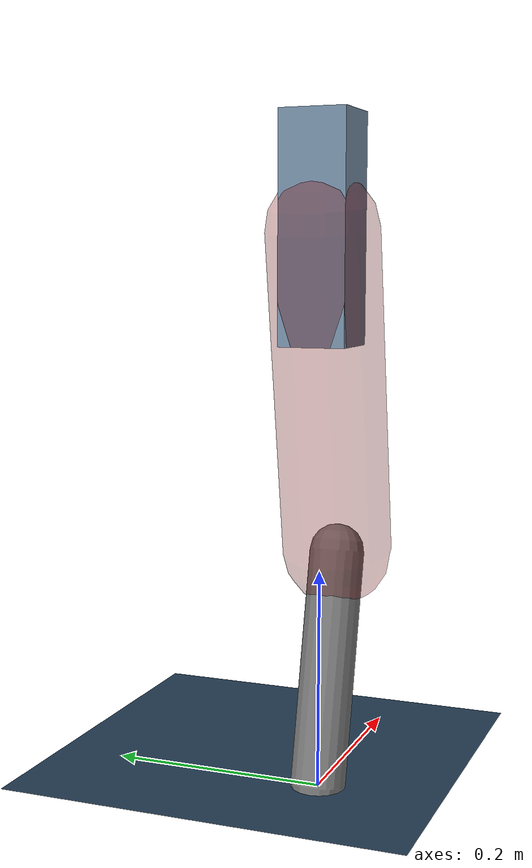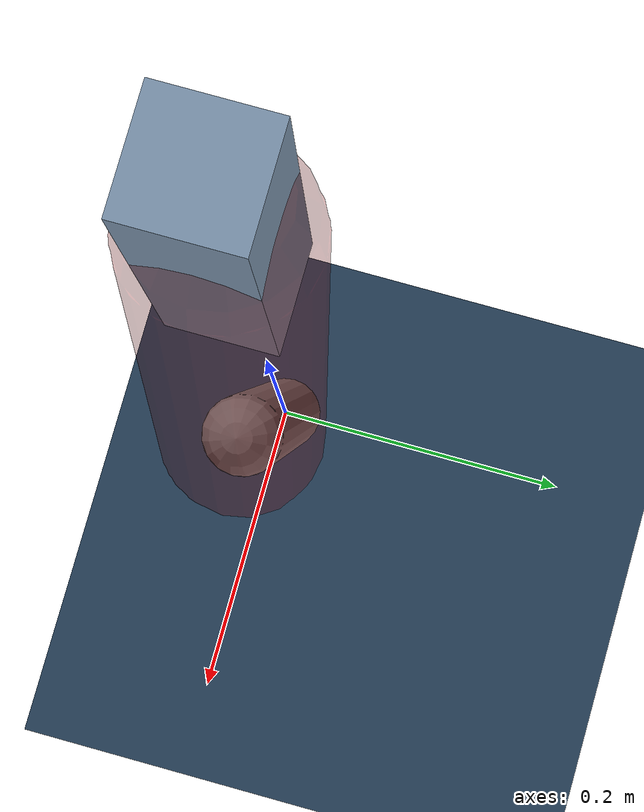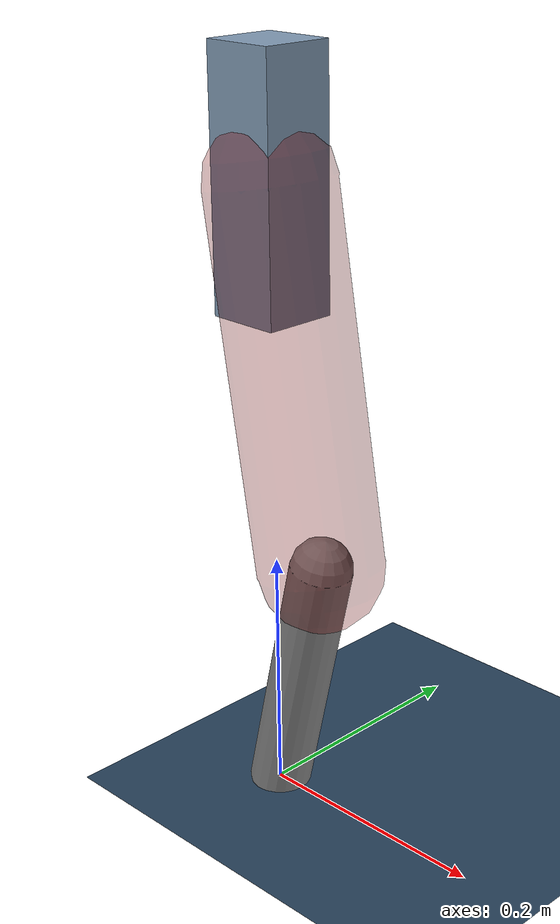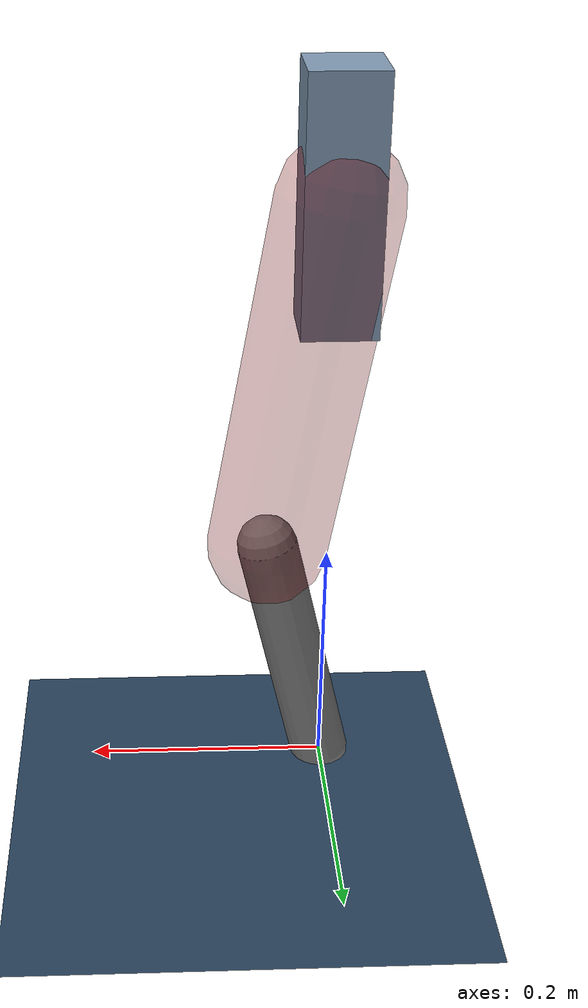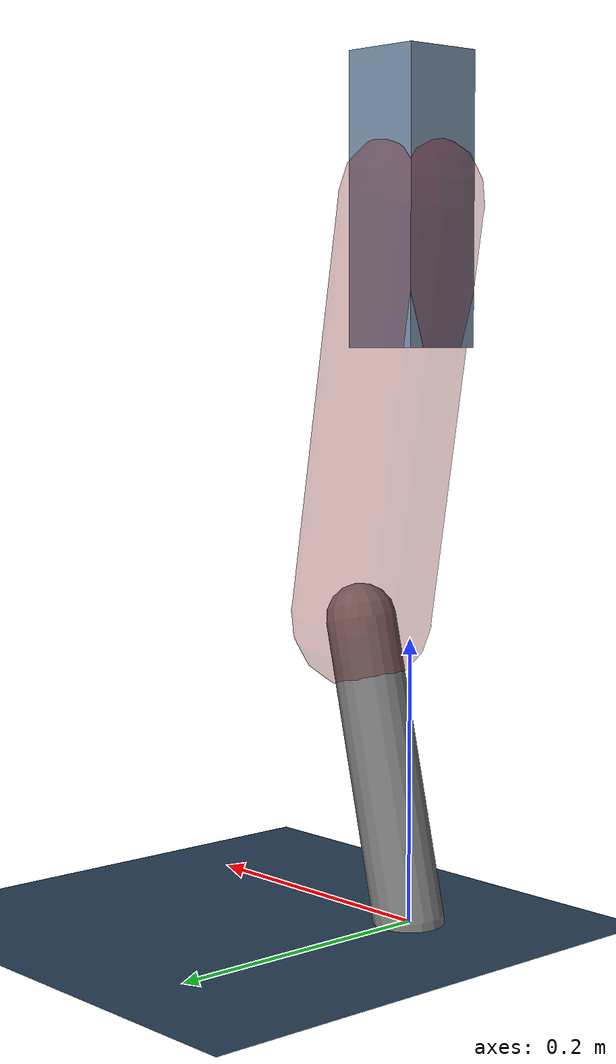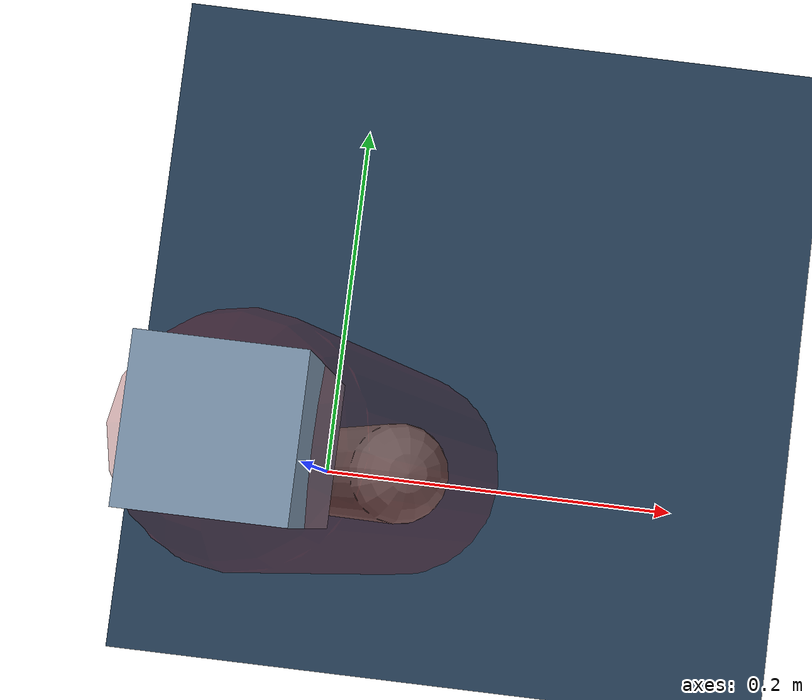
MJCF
<mujoco model="Hopper2D">
	<compiler inertiafromgeom="true" angle="radian" />
	<option timestep="0.001" integrator="implicit" cone="elliptic" solver="Newton" tolerance="1e-10" />

	<default>
		<geom contype="1" conaffinity="1" condim="3" friction="2 0.005 0.0001" solref="0.005 1" />
		<joint limited="true" damping="0.1" />
	</default>

	<asset>
		<texture name="skybox" type="skybox" builtin="gradient" rgb1=".4 .6 .8" rgb2="0 0 0" width="800" height="800" />
		<texture name="grid" type="2d" builtin="checker" rgb1=".1 .2 .3" rgb2=".2 .3 .4" width="300" height="300" mark="edge" markrgb=".2 .3 .4" />
		<material name="ground" texture="grid" texrepeat="1 1" texuniform="true" reflectance="0.1" />
		<material name="leg" rgba="0.5 0.6 0.7 1" />
	</asset>

	<worldbody>

		<geom name="floor" type="plane" size="5 5 0.25" material="ground" />

		<light directional="false" diffuse="0.8 0.8 0.8" specular="0.3 0.3 0.3" pos="0 0 2" dir="0 0 -1" />
		<light mode="targetbodycom" target="base" directional="false" diffuse="0.8 0.8 0.8" specular="0.3 0.3 0.3" pos="0 0 2" dir="0 0 -1" />

		<camera name="fixed" pos="0 -2 1" xyaxes="1 0 0 0 0 1" />
		<camera name="tracking" mode="trackcom" pos="0 -3 1" />

		<body name="root" pos="0 0 0.5008728119147449">
			<joint name="slide_x" type="slide" axis="1 0 0" range="-100 100" />
			<joint name="slide_z" type="slide" axis="0 0 1" range="0 10" />

			<body name="base" pos="0 0 0">
				<geom name="torso" type="box" size="0.03 0.03 0.1" mass="1.63" material="leg" />

				<body name="link1" pos="0 0 0" euler="0 1.4021253401011737 0">
					<joint type="hinge" axis="0 -1 0" pos="0 0 0" name="hinge1" limited="true" range="-3.14 3.14" stiffness="0" damping="0.1" />
					<geom name="thigh" type="capsule" fromto="0 0 0 0.2956934533327379 0 0" size="0.05" rgba="0.5 0 0 0.3" mass="0.9771029786651185" />

					<body name="link2" pos="0.2956934533327379 0 0" euler="0 0.4014530904762983 0">
						<joint type="hinge" axis="0 -1 0" pos="0 0 0" name="hinge2" limited="true" range="-3.14 3.14" stiffness="0" damping="0.1" />
						<geom name="shank" type="capsule" fromto="0 0 0 0.215179358582007 0 0" size="0.025" mass="0.4136434868656056" />

					</body>
				</body>
			</body>
		</body>
	</worldbody>

	<actuator>
		<motor name="torque1" joint="hinge1" ctrlrange="-43.83219441564347 43.83219441564347" ctrllimited="true" gear="1" />
		<motor name="torque2" joint="hinge2" ctrlrange="-50.13098708708383 50.13098708708383" ctrllimited="true" gear="1" />
	</actuator>
</mujoco>
